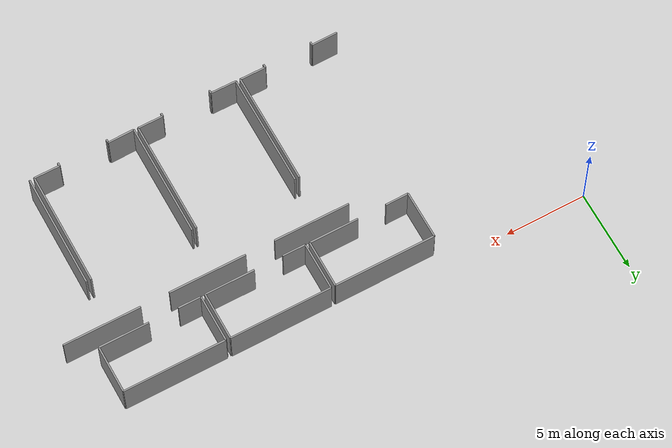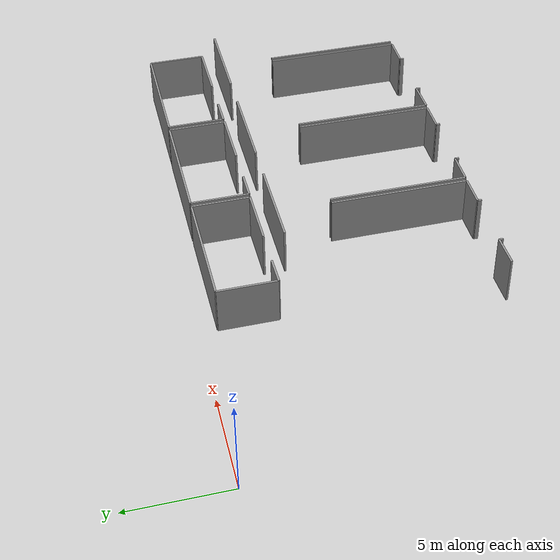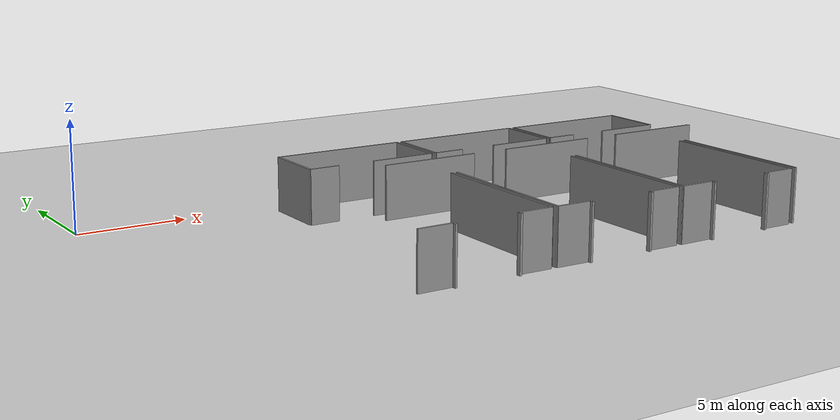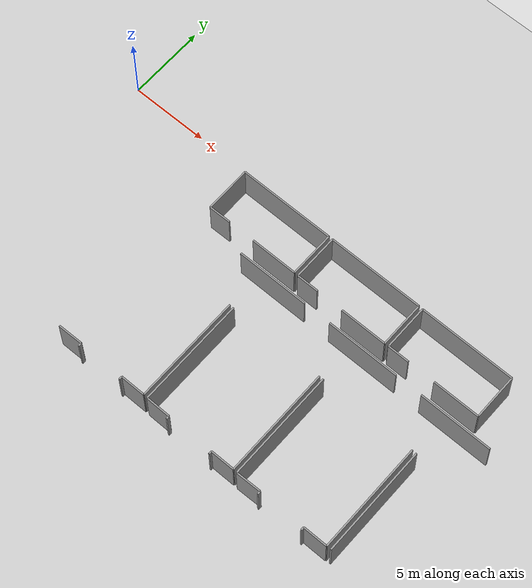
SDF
<sdf version="1.6">
 <world name="default">
  <model name="ground_plane">
   <static>1</static>
   <link name="link">
    <collision name="collision">
     <geometry><plane><normal>0 0 1</normal><size>100 100</size></plane></geometry>
     <surface><friction><ode><mu>100</mu><mu2>50</mu2></ode></friction></surface>
    </collision>
    <visual name="visual">
     <cast_shadows>0</cast_shadows>
     <geometry><plane><normal>0 0 1</normal><size>100 100</size></plane></geometry>
     <material>
      <script><uri>file://media/materials/scripts/gazebo.material</uri><name>Gazebo/Grey</name></script>
     </material>
    </visual>
   </link>
  </model>
  <model name="50045231">
   <static>1</static>
   <link name="Wall_99">
    <collision name="Wall_99_Collision">
     <geometry><box><size>4.68402053026 0.1 2.5</size></box></geometry>
     <pose>2.34201026513 0 1.25 0 0 0</pose>
    </collision>
    <visual name="Wall_99_Visual">
     <pose>2.34201026513 0 1.25 0 0 0</pose>
     <geometry><box><size>4.68402053026 0.1 2.5</size></box></geometry>
     <material>
      <script><uri>file://media/materials/scripts/gazebo.material</uri><name>Gazebo/Grey</name></script>
      <ambient>1 1 1 1</ambient>
     </material>
    </visual>
    <pose>59.4432213982 -19.8384732999 0 0 0 0.0</pose>
   </link>
   <link name="Wall_100">
    <collision name="Wall_100_Collision">
     <geometry><box><size>4.74556055348 0.1 2.5</size></box></geometry>
     <pose>2.37278027674 0 1.25 0 0 0</pose>
    </collision>
    <visual name="Wall_100_Visual">
     <pose>2.37278027674 0 1.25 0 0 0</pose>
     <geometry><box><size>4.74556055348 0.1 2.5</size></box></geometry>
     <material>
      <script><uri>file://media/materials/scripts/gazebo.material</uri><name>Gazebo/Grey</name></script>
      <ambient>1 1 1 1</ambient>
     </material>
    </visual>
    <pose>65.9176125009 -19.8384732999 0 0 0 0.0</pose>
   </link>
   <link name="Wall_101">
    <collision name="Wall_101_Collision">
     <geometry><box><size>4.74238838733 0.1 2.5</size></box></geometry>
     <pose>2.37119419367 0 1.25 0 0 0</pose>
    </collision>
    <visual name="Wall_101_Visual">
     <pose>2.37119419367 0 1.25 0 0 0</pose>
     <geometry><box><size>4.74238838733 0.1 2.5</size></box></geometry>
     <material>
      <script><uri>file://media/materials/scripts/gazebo.material</uri><name>Gazebo/Grey</name></script>
      <ambient>1 1 1 1</ambient>
     </material>
    </visual>
    <pose>72.4154776331 -19.8384732999 0 0 0 0.0</pose>
   </link>
   <link name="Wall_133">
    <collision name="Wall_133_Collision">
     <geometry><box><size>7.02507914555 0.1 2.5</size></box></geometry>
     <pose>3.51253957277 0 1.25 0 0 0</pose>
    </collision>
    <visual name="Wall_133_Visual">
     <pose>3.51253957277 0 1.25 0 0 0</pose>
     <geometry><box><size>7.02507914555 0.1 2.5</size></box></geometry>
     <material>
      <script><uri>file://media/materials/scripts/gazebo.material</uri><name>Gazebo/Grey</name></script>
      <ambient>1 1 1 1</ambient>
     </material>
    </visual>
    <pose>61.0705426307 -22.5996535995 0 0 0 -1.57079632679</pose>
   </link>
   <link name="Wall_134">
    <collision name="Wall_134_Collision">
     <geometry><box><size>1.61044530868 0.1 2.5</size></box></geometry>
     <pose>0.805222654342 0 1.25 0 0 0</pose>
    </collision>
    <visual name="Wall_134_Visual">
     <pose>0.805222654342 0 1.25 0 0 0</pose>
     <geometry><box><size>1.61044530868 0.1 2.5</size></box></geometry>
     <material>
      <script><uri>file://media/materials/scripts/gazebo.material</uri><name>Gazebo/Grey</name></script>
      <ambient>1 1 1 1</ambient>
     </material>
    </visual>
    <pose>61.0705426307 -29.624732745 0 0 0 3.14159265359</pose>
   </link>
   <link name="Wall_135">
    <collision name="Wall_135_Collision">
     <geometry><box><size>0.20860164572 0.1 2.5</size></box></geometry>
     <pose>0.10430082286 0 1.25 0 0 0</pose>
    </collision>
    <visual name="Wall_135_Visual">
     <pose>0.10430082286 0 1.25 0 0 0</pose>
     <geometry><box><size>0.20860164572 0.1 2.5</size></box></geometry>
     <material>
      <script><uri>file://media/materials/scripts/gazebo.material</uri><name>Gazebo/Grey</name></script>
      <ambient>1 1 1 1</ambient>
     </material>
    </visual>
    <pose>59.4600973221 -29.624732745 0 0 0 -1.57079632679</pose>
   </link>
   <link name="Wall_136">
    <collision name="Wall_136_Collision">
     <geometry><box><size>0.20860164572 0.1 2.5</size></box></geometry>
     <pose>0.10430082286 0 1.25 0 0 0</pose>
    </collision>
    <visual name="Wall_136_Visual">
     <pose>0.10430082286 0 1.25 0 0 0</pose>
     <geometry><box><size>0.20860164572 0.1 2.5</size></box></geometry>
     <material>
      <script><uri>file://media/materials/scripts/gazebo.material</uri><name>Gazebo/Grey</name></script>
      <ambient>1 1 1 1</ambient>
     </material>
    </visual>
    <pose>56.4481890103 -29.8333343907 0 0 0 1.57079632679</pose>
   </link>
   <link name="Wall_137">
    <collision name="Wall_137_Collision">
     <geometry><box><size>1.61698482869 0.1 2.5</size></box></geometry>
     <pose>0.808492414346 0 1.25 0 0 0</pose>
    </collision>
    <visual name="Wall_137_Visual">
     <pose>0.808492414346 0 1.25 0 0 0</pose>
     <geometry><box><size>1.61698482869 0.1 2.5</size></box></geometry>
     <material>
      <script><uri>file://media/materials/scripts/gazebo.material</uri><name>Gazebo/Grey</name></script>
      <ambient>1 1 1 1</ambient>
     </material>
    </visual>
    <pose>56.4481890103 -29.624732745 0 0 0 -3.12605474231</pose>
   </link>
   <link name="Wall_138">
    <collision name="Wall_138_Collision">
     <geometry><box><size>7.04347770919 0.1 2.5</size></box></geometry>
     <pose>3.52173885459 0 1.25 0 0 0</pose>
    </collision>
    <visual name="Wall_138_Visual">
     <pose>3.52173885459 0 1.25 0 0 0</pose>
     <geometry><box><size>7.04347770919 0.1 2.5</size></box></geometry>
     <material>
      <script><uri>file://media/materials/scripts/gazebo.material</uri><name>Gazebo/Grey</name></script>
      <ambient>1 1 1 1</ambient>
     </material>
    </visual>
    <pose>61.337004587 -29.6405935757 0 0 0 1.57079632679</pose>
   </link>
   <link name="Wall_139">
    <collision name="Wall_139_Collision">
     <geometry><box><size>7.05616637377 0.1 2.5</size></box></geometry>
     <pose>3.52808318689 0 1.25 0 0 0</pose>
    </collision>
    <visual name="Wall_139_Visual">
     <pose>3.52808318689 0 1.25 0 0 0</pose>
     <geometry><box><size>7.05616637377 0.1 2.5</size></box></geometry>
     <material>
      <script><uri>file://media/materials/scripts/gazebo.material</uri><name>Gazebo/Grey</name></script>
      <ambient>1 1 1 1</ambient>
     </material>
    </visual>
    <pose>67.5528007055 -22.5971158665 0 0 0 -1.57079632679</pose>
   </link>
   <link name="Wall_140">
    <collision name="Wall_140_Collision">
     <geometry><box><size>1.55905621713 0.1 2.5</size></box></geometry>
     <pose>0.779528108564 0 1.25 0 0 0</pose>
    </collision>
    <visual name="Wall_140_Visual">
     <pose>0.779528108564 0 1.25 0 0 0</pose>
     <geometry><box><size>1.55905621713 0.1 2.5</size></box></geometry>
     <material>
      <script><uri>file://media/materials/scripts/gazebo.material</uri><name>Gazebo/Grey</name></script>
      <ambient>1 1 1 1</ambient>
     </material>
    </visual>
    <pose>67.5528007055 -29.6532822403 0 0 0 3.14159265359</pose>
   </link>
   <link name="Wall_141">
    <collision name="Wall_141_Collision">
     <geometry><box><size>0.196801187659 0.1 2.5</size></box></geometry>
     <pose>0.0984005938295 0 1.25 0 0 0</pose>
    </collision>
    <visual name="Wall_141_Visual">
     <pose>0.0984005938295 0 1.25 0 0 0</pose>
     <geometry><box><size>0.196801187659 0.1 2.5</size></box></geometry>
     <material>
      <script><uri>file://media/materials/scripts/gazebo.material</uri><name>Gazebo/Grey</name></script>
      <ambient>1 1 1 1</ambient>
     </material>
    </visual>
    <pose>65.9937444884 -29.6532822403 0 0 0 -1.57079632679</pose>
   </link>
   <link name="Wall_142">
    <collision name="Wall_142_Collision">
     <geometry><box><size>0.198831373992 0.1 2.5</size></box></geometry>
     <pose>0.099415686996 0 1.25 0 0 0</pose>
    </collision>
    <visual name="Wall_142_Visual">
     <pose>0.099415686996 0 1.25 0 0 0</pose>
     <geometry><box><size>0.198831373992 0.1 2.5</size></box></geometry>
     <material>
      <script><uri>file://media/materials/scripts/gazebo.material</uri><name>Gazebo/Grey</name></script>
      <ambient>1 1 1 1</ambient>
     </material>
    </visual>
    <pose>62.9332385913 -29.850083428 0 0 0 1.57079632679</pose>
   </link>
   <link name="Wall_143">
    <collision name="Wall_143_Collision">
     <geometry><box><size>1.5962695887 0.1 2.5</size></box></geometry>
     <pose>0.79813479435 0 1.25 0 0 0</pose>
    </collision>
    <visual name="Wall_143_Visual">
     <pose>0.79813479435 0 1.25 0 0 0</pose>
     <geometry><box><size>1.5962695887 0.1 2.5</size></box></geometry>
     <material>
      <script><uri>file://media/materials/scripts/gazebo.material</uri><name>Gazebo/Grey</name></script>
      <ambient>1 1 1 1</ambient>
     </material>
    </visual>
    <pose>62.9332385913 -29.651252054 0 0 0 3.13491548732</pose>
   </link>
   <link name="Wall_144">
    <collision name="Wall_144_Collision">
     <geometry><box><size>7.09042576814 0.1 2.5</size></box></geometry>
     <pose>3.54521288407 0 1.25 0 0 0</pose>
    </collision>
    <visual name="Wall_144_Visual">
     <pose>3.54521288407 0 1.25 0 0 0</pose>
     <geometry><box><size>7.09042576814 0.1 2.5</size></box></geometry>
     <material>
      <script><uri>file://media/materials/scripts/gazebo.material</uri><name>Gazebo/Grey</name></script>
      <ambient>1 1 1 1</ambient>
     </material>
    </visual>
    <pose>67.8082235235 -29.6786595695 0 0 0 1.57079632679</pose>
   </link>
   <link name="Wall_145">
    <collision name="Wall_145_Collision">
     <geometry><box><size>7.06162249954 0.1 2.5</size></box></geometry>
     <pose>3.53081124977 0 1.25 0 0 0</pose>
    </collision>
    <visual name="Wall_145_Visual">
     <pose>3.53081124977 0 1.25 0 0 0</pose>
     <geometry><box><size>7.06162249954 0.1 2.5</size></box></geometry>
     <material>
      <script><uri>file://media/materials/scripts/gazebo.material</uri><name>Gazebo/Grey</name></script>
      <ambient>1 1 1 1</ambient>
     </material>
    </visual>
    <pose>74.054853097 -22.5882338013 0 0 0 -1.57079632679</pose>
   </link>
   <link name="Wall_146">
    <collision name="Wall_146_Collision">
     <geometry><box><size>1.5797387404 0.1 2.5</size></box></geometry>
     <pose>0.789869370198 0 1.25 0 0 0</pose>
    </collision>
    <visual name="Wall_146_Visual">
     <pose>0.789869370198 0 1.25 0 0 0</pose>
     <geometry><box><size>1.5797387404 0.1 2.5</size></box></geometry>
     <material>
      <script><uri>file://media/materials/scripts/gazebo.material</uri><name>Gazebo/Grey</name></script>
      <ambient>1 1 1 1</ambient>
     </material>
    </visual>
    <pose>74.054853097 -29.6498563009 0 0 0 3.14159265359</pose>
   </link>
   <link name="Wall_147">
    <collision name="Wall_147_Collision">
     <geometry><box><size>0.208474759074 0.1 2.5</size></box></geometry>
     <pose>0.104237379537 0 1.25 0 0 0</pose>
    </collision>
    <visual name="Wall_147_Visual">
     <pose>0.104237379537 0 1.25 0 0 0</pose>
     <geometry><box><size>0.208474759074 0.1 2.5</size></box></geometry>
     <material>
      <script><uri>file://media/materials/scripts/gazebo.material</uri><name>Gazebo/Grey</name></script>
      <ambient>1 1 1 1</ambient>
     </material>
    </visual>
    <pose>72.4751143566 -29.6498563009 0 0 0 -1.57079632679</pose>
   </link>
   <link name="Wall_148">
    <collision name="Wall_148_Collision">
     <geometry><box><size>0.212788905032 0.1 2.5</size></box></geometry>
     <pose>0.106394452516 0 1.25 0 0 0</pose>
    </collision>
    <visual name="Wall_148_Visual">
     <pose>0.106394452516 0 1.25 0 0 0</pose>
     <geometry><box><size>0.212788905032 0.1 2.5</size></box></geometry>
     <material>
      <script><uri>file://media/materials/scripts/gazebo.material</uri><name>Gazebo/Grey</name></script>
      <ambient>1 1 1 1</ambient>
     </material>
    </visual>
    <pose>69.4412546552 -29.8583310599 0 0 0 1.57079632679</pose>
   </link>
   <link name="Wall_149">
    <collision name="Wall_149_Collision">
     <geometry><box><size>1.63336690307 0.1 2.5</size></box></geometry>
     <pose>0.816683451535 0 1.25 0 0 0</pose>
    </collision>
    <visual name="Wall_149_Visual">
     <pose>0.816683451535 0 1.25 0 0 0</pose>
     <geometry><box><size>1.63336690307 0.1 2.5</size></box></geometry>
     <material>
      <script><uri>file://media/materials/scripts/gazebo.material</uri><name>Gazebo/Grey</name></script>
      <ambient>1 1 1 1</ambient>
     </material>
    </visual>
    <pose>69.4412546552 -29.6455421549 0 0 0 -3.12131571275</pose>
   </link>
   <link name="Wall_150">
    <collision name="Wall_150_Collision">
     <geometry><box><size>7.05870410669 0.1 2.5</size></box></geometry>
     <pose>3.52935205334 0 1.25 0 0 0</pose>
    </collision>
    <visual name="Wall_150_Visual">
     <pose>3.52935205334 0 1.25 0 0 0</pose>
     <geometry><box><size>7.05870410669 0.1 2.5</size></box></geometry>
     <material>
      <script><uri>file://media/materials/scripts/gazebo.material</uri><name>Gazebo/Grey</name></script>
      <ambient>1 1 1 1</ambient>
     </material>
    </visual>
    <pose>74.342885783 -29.6532822403 0 0 0 1.57079632679</pose>
   </link>
   <link name="Wall_182">
    <collision name="Wall_182_Collision">
     <geometry><box><size>2.92397586616 0.1 2.5</size></box></geometry>
     <pose>1.46198793308 0 1.25 0 0 0</pose>
    </collision>
    <visual name="Wall_182_Visual">
     <pose>1.46198793308 0 1.25 0 0 0</pose>
     <geometry><box><size>2.92397586616 0.1 2.5</size></box></geometry>
     <material>
      <script><uri>file://media/materials/scripts/gazebo.material</uri><name>Gazebo/Grey</name></script>
      <ambient>1 1 1 1</ambient>
     </material>
    </visual>
    <pose>69.2509246864 -18.7879787592 0 0 0 1.57079632679</pose>
   </link>
   <link name="Wall_183">
    <collision name="Wall_183_Collision">
     <geometry><box><size>6.25601918526 0.1 2.5</size></box></geometry>
     <pose>3.12800959263 0 1.25 0 0 0</pose>
    </collision>
    <visual name="Wall_183_Visual">
     <pose>3.12800959263 0 1.25 0 0 0</pose>
     <geometry><box><size>6.25601918526 0.1 2.5</size></box></geometry>
     <material>
      <script><uri>file://media/materials/scripts/gazebo.material</uri><name>Gazebo/Grey</name></script>
      <ambient>1 1 1 1</ambient>
     </material>
    </visual>
    <pose>69.2509246864 -15.864002893 0 0 0 0.0</pose>
   </link>
   <link name="Wall_184">
    <collision name="Wall_184_Collision">
     <geometry><box><size>2.92397586616 0.1 2.5</size></box></geometry>
     <pose>1.46198793308 0 1.25 0 0 0</pose>
    </collision>
    <visual name="Wall_184_Visual">
     <pose>1.46198793308 0 1.25 0 0 0</pose>
     <geometry><box><size>2.92397586616 0.1 2.5</size></box></geometry>
     <material>
      <script><uri>file://media/materials/scripts/gazebo.material</uri><name>Gazebo/Grey</name></script>
      <ambient>1 1 1 1</ambient>
     </material>
    </visual>
    <pose>75.5069438717 -15.864002893 0 0 0 -1.57079632679</pose>
   </link>
   <link name="Wall_185">
    <collision name="Wall_185_Collision">
     <geometry><box><size>3.05631863774 0.1 2.5</size></box></geometry>
     <pose>1.52815931887 0 1.25 0 0 0</pose>
    </collision>
    <visual name="Wall_185_Visual">
     <pose>1.52815931887 0 1.25 0 0 0</pose>
     <geometry><box><size>3.05631863774 0.1 2.5</size></box></geometry>
     <material>
      <script><uri>file://media/materials/scripts/gazebo.material</uri><name>Gazebo/Grey</name></script>
      <ambient>1 1 1 1</ambient>
     </material>
    </visual>
    <pose>75.5069438717 -18.7879787592 0 0 0 3.14159265359</pose>
   </link>
   <link name="Wall_186">
    <collision name="Wall_186_Collision">
     <geometry><box><size>1.40120922973 0.1 2.5</size></box></geometry>
     <pose>0.700604614867 0 1.25 0 0 0</pose>
    </collision>
    <visual name="Wall_186_Visual">
     <pose>0.700604614867 0 1.25 0 0 0</pose>
     <geometry><box><size>1.40120922973 0.1 2.5</size></box></geometry>
     <material>
      <script><uri>file://media/materials/scripts/gazebo.material</uri><name>Gazebo/Grey</name></script>
      <ambient>1 1 1 1</ambient>
     </material>
    </visual>
    <pose>70.6521339162 -18.7879787592 0 0 0 3.14159265359</pose>
   </link>
   <link name="Wall_187">
    <collision name="Wall_187_Collision">
     <geometry><box><size>3.05403467812 0.1 2.5</size></box></geometry>
     <pose>1.52701733906 0 1.25 0 0 0</pose>
    </collision>
    <visual name="Wall_187_Visual">
     <pose>1.52701733906 0 1.25 0 0 0</pose>
     <geometry><box><size>3.05403467812 0.1 2.5</size></box></geometry>
     <material>
      <script><uri>file://media/materials/scripts/gazebo.material</uri><name>Gazebo/Grey</name></script>
      <ambient>1 1 1 1</ambient>
     </material>
    </visual>
    <pose>68.9882693296 -18.8044740231 0 0 0 3.14159265359</pose>
   </link>
   <link name="Wall_188">
    <collision name="Wall_188_Collision">
     <geometry><box><size>1.42113043313 0.1 2.5</size></box></geometry>
     <pose>0.710565216564 0 1.25 0 0 0</pose>
    </collision>
    <visual name="Wall_188_Visual">
     <pose>0.710565216564 0 1.25 0 0 0</pose>
     <geometry><box><size>1.42113043313 0.1 2.5</size></box></geometry>
     <material>
      <script><uri>file://media/materials/scripts/gazebo.material</uri><name>Gazebo/Grey</name></script>
      <ambient>1 1 1 1</ambient>
     </material>
    </visual>
    <pose>64.1665767886 -18.8044740231 0 0 0 3.14159265359</pose>
   </link>
   <link name="Wall_189">
    <collision name="Wall_189_Collision">
     <geometry><box><size>2.95645884749 0.1 2.5</size></box></geometry>
     <pose>1.47822942374 0 1.25 0 0 0</pose>
    </collision>
    <visual name="Wall_189_Visual">
     <pose>1.47822942374 0 1.25 0 0 0</pose>
     <geometry><box><size>2.95645884749 0.1 2.5</size></box></geometry>
     <material>
      <script><uri>file://media/materials/scripts/gazebo.material</uri><name>Gazebo/Grey</name></script>
      <ambient>1 1 1 1</ambient>
     </material>
    </visual>
    <pose>62.7454463555 -18.8044740231 0 0 0 1.57079632679</pose>
   </link>
   <link name="Wall_190">
    <collision name="Wall_190_Collision">
     <geometry><box><size>6.23774750826 0.1 2.5</size></box></geometry>
     <pose>3.11887375413 0 1.25 0 0 0</pose>
    </collision>
    <visual name="Wall_190_Visual">
     <pose>3.11887375413 0 1.25 0 0 0</pose>
     <geometry><box><size>6.23774750826 0.1 2.5</size></box></geometry>
     <material>
      <script><uri>file://media/materials/scripts/gazebo.material</uri><name>Gazebo/Grey</name></script>
      <ambient>1 1 1 1</ambient>
     </material>
    </visual>
    <pose>62.7454463555 -15.8480151756 0 0 0 0.0</pose>
   </link>
   <link name="Wall_191">
    <collision name="Wall_191_Collision">
     <geometry><box><size>2.95646320411 0.1 2.5</size></box></geometry>
     <pose>1.47823160205 0 1.25 0 0 0</pose>
    </collision>
    <visual name="Wall_191_Visual">
     <pose>1.47823160205 0 1.25 0 0 0</pose>
     <geometry><box><size>2.95646320411 0.1 2.5</size></box></geometry>
     <material>
      <script><uri>file://media/materials/scripts/gazebo.material</uri><name>Gazebo/Grey</name></script>
      <ambient>1 1 1 1</ambient>
     </material>
    </visual>
    <pose>68.9831938638 -15.8480151756 0 0 0 -1.56907959028</pose>
   </link>
   <link name="Wall_192">
    <collision name="Wall_192_Collision">
     <geometry><box><size>2.96178808661 0.1 2.5</size></box></geometry>
     <pose>1.48089404331 0 1.25 0 0 0</pose>
    </collision>
    <visual name="Wall_192_Visual">
     <pose>1.48089404331 0 1.25 0 0 0</pose>
     <geometry><box><size>2.96178808661 0.1 2.5</size></box></geometry>
     <material>
      <script><uri>file://media/materials/scripts/gazebo.material</uri><name>Gazebo/Grey</name></script>
      <ambient>1 1 1 1</ambient>
     </material>
    </visual>
    <pose>56.2479618833 -18.8122141085 0 0 0 1.57079632679</pose>
   </link>
   <link name="Wall_193">
    <collision name="Wall_193_Collision">
     <geometry><box><size>6.23229138249 0.1 2.5</size></box></geometry>
     <pose>3.11614569125 0 1.25 0 0 0</pose>
    </collision>
    <visual name="Wall_193_Visual">
     <pose>3.11614569125 0 1.25 0 0 0</pose>
     <geometry><box><size>6.23229138249 0.1 2.5</size></box></geometry>
     <material>
      <script><uri>file://media/materials/scripts/gazebo.material</uri><name>Gazebo/Grey</name></script>
      <ambient>1 1 1 1</ambient>
     </material>
    </visual>
    <pose>56.2479618833 -15.8504260219 0 0 0 0.0</pose>
   </link>
   <link name="Wall_194">
    <collision name="Wall_194_Collision">
     <geometry><box><size>2.94262820309 0.1 2.5</size></box></geometry>
     <pose>1.47131410155 0 1.25 0 0 0</pose>
    </collision>
    <visual name="Wall_194_Visual">
     <pose>1.47131410155 0 1.25 0 0 0</pose>
     <geometry><box><size>2.94262820309 0.1 2.5</size></box></geometry>
     <material>
      <script><uri>file://media/materials/scripts/gazebo.material</uri><name>Gazebo/Grey</name></script>
      <ambient>1 1 1 1</ambient>
     </material>
    </visual>
    <pose>62.4802532657 -15.8504260219 0 0 0 -1.57079632679</pose>
   </link>
   <link name="Wall_195">
    <collision name="Wall_195_Collision">
     <geometry><box><size>3.03906205391 0.1 2.5</size></box></geometry>
     <pose>1.51953102696 0 1.25 0 0 0</pose>
    </collision>
    <visual name="Wall_195_Visual">
     <pose>1.51953102696 0 1.25 0 0 0</pose>
     <geometry><box><size>3.03906205391 0.1 2.5</size></box></geometry>
     <material>
      <script><uri>file://media/materials/scripts/gazebo.material</uri><name>Gazebo/Grey</name></script>
      <ambient>1 1 1 1</ambient>
     </material>
    </visual>
    <pose>62.4802532657 -18.793054225 0 0 0 3.14159265359</pose>
   </link>
   <link name="Wall_196">
    <collision name="Wall_196_Collision">
     <geometry><box><size>1.42354333781 0.1 2.5</size></box></geometry>
     <pose>0.711771668906 0 1.25 0 0 0</pose>
    </collision>
    <visual name="Wall_196_Visual">
     <pose>0.711771668906 0 1.25 0 0 0</pose>
     <geometry><box><size>1.42354333781 0.1 2.5</size></box></geometry>
     <material>
      <script><uri>file://media/materials/scripts/gazebo.material</uri><name>Gazebo/Grey</name></script>
      <ambient>1 1 1 1</ambient>
     </material>
    </visual>
    <pose>57.671376276 -18.793054225 0 0 0 -3.12813295656</pose>
   </link>
   <pose>-47.0 14.9250800972 0 0 0 0</pose>
  </model>
 </world>
</sdf>
